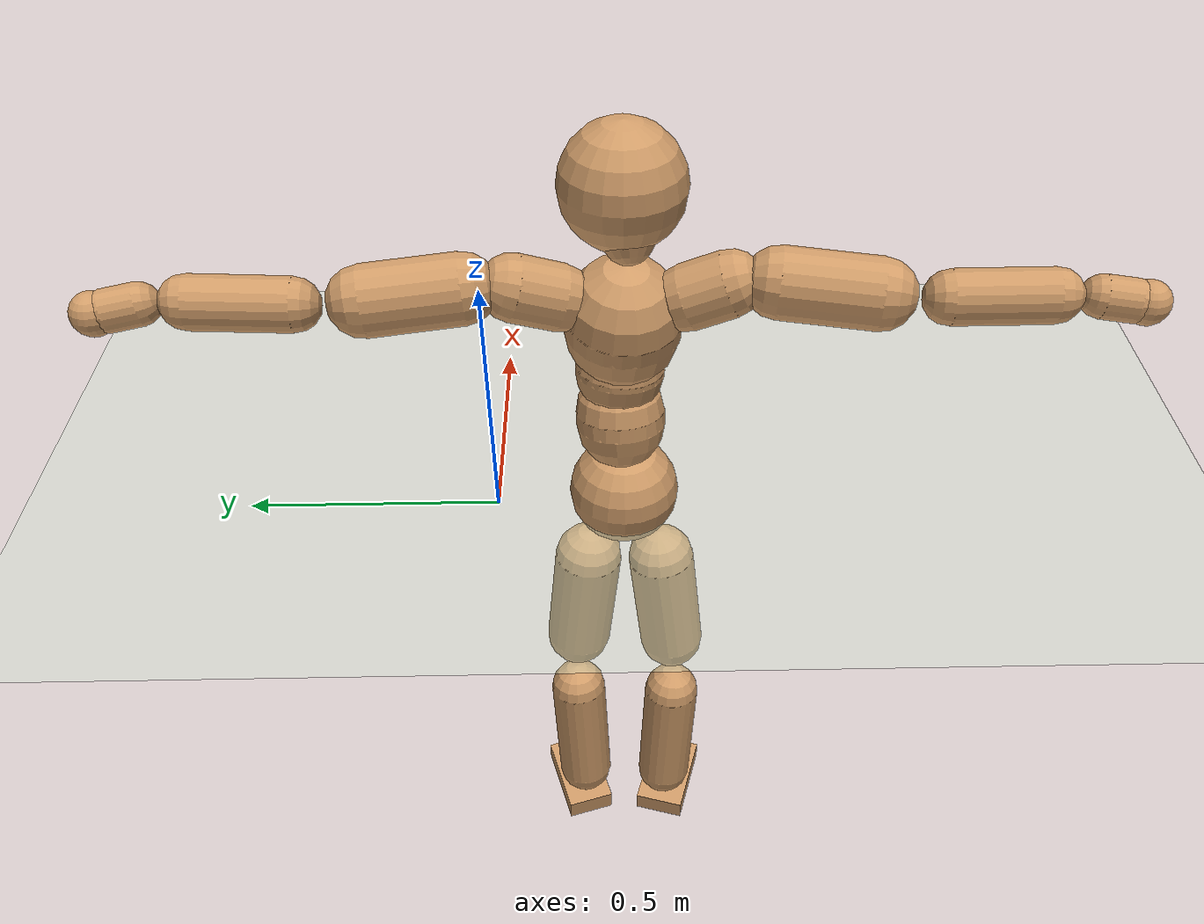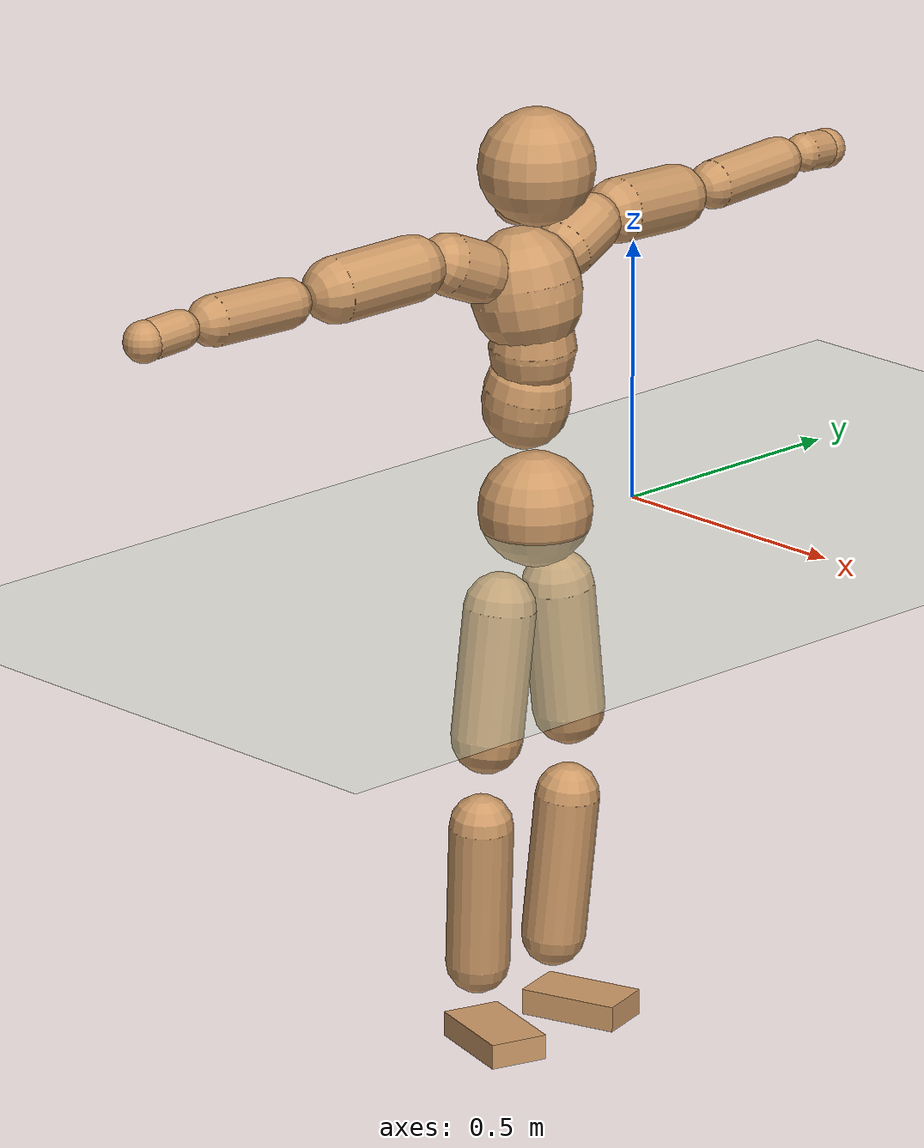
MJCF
<mujoco model="humanoid">
  <compiler coordinate="local"/>
  <default>
    <joint damping="0.0" armature="0.01" stiffness="0.0" limited="true"/>
    <geom conaffinity="1" condim="3" contype="7" margin="0.001" rgba="0.8 0.6 .4 1"/>
  </default>
  <asset>
    <texture type="skybox" builtin="gradient" rgb1=".4 .5 .6" rgb2="0 0 0" width="100" height="100"/>
    <texture builtin="flat" height="1278" mark="cross" markrgb="1 1 1" name="texgeom" random="0.01" rgb1="0.8 0.6 0.4" rgb2="0.8 0.6 0.4" type="cube" width="127"/>
    <texture builtin="checker" height="100" name="texplane" rgb1="0 0 0" rgb2="0.8 0.8 0.8" type="2d" width="100"/>
    <material name="MatPlane" reflectance="0.5" shininess="1" specular="1" texrepeat="60 60" texture="texplane"/>
    <material name="geom" texture="texgeom" texuniform="true"/>
  </asset>
  <worldbody>
    <light cutoff="100" diffuse="1 1 1" dir="-0 0 -1.3" directional="true" exponent="1" pos="0 0 1.3" specular=".1 .1 .1"/>
    <geom conaffinity="1" condim="3" name="floor" pos="0 0 0" rgba="0.8 0.9 0.8 1" size="100 100 .2" type="plane" material="MatPlane"/>
    <body name="Pelvis" pos="-0.0014 -0.2535 0.0367">
      <freejoint name="Pelvis"/>
      <geom type="sphere" contype="1" conaffinity="1" density="500" size="0.1086" pos="0.0000 0.0000 0.0000" name="Pelvis"/>
      <body name="L_Hip" pos="-0.017 0.066 -0.0888">
        <joint name="L_Hip_x" type="hinge" pos="0 0 0" axis="1 0 0" stiffness="800" damping="80" armature="0.02" range="-180.0000 180.0000"/>
        <joint name="L_Hip_y" type="hinge" pos="0 0 0" axis="0 1 0" stiffness="800" damping="80" armature="0.02" range="-180.0000 180.0000"/>
        <joint name="L_Hip_z" type="hinge" pos="0 0 0" axis="0 0 1" stiffness="800" damping="80" armature="0.02" range="-180.0000 180.0000"/>
        <geom type="capsule" contype="1" conaffinity="1" density="500" fromto="0.0007 0.0090 -0.0831 0.0027 0.0360 -0.3323" size="0.0689" name="L_Hip"/>
        <body name="L_Knee" pos="0.0033 0.045 -0.4154">
          <joint name="L_Knee_x" type="hinge" pos="0 0 0" axis="1 0 0" stiffness="800" damping="80" armature="0.02" range="-180.0000 180.0000"/>
          <joint name="L_Knee_y" type="hinge" pos="0 0 0" axis="0 1 0" stiffness="800" damping="80" armature="0.02" range="-180.0000 180.0000"/>
          <joint name="L_Knee_z" type="hinge" pos="0 0 0" axis="0 0 1" stiffness="800" damping="80" armature="0.02" range="-180.0000 180.0000"/>
          <geom type="capsule" contype="1" conaffinity="1" density="500" fromto="-0.0086 -0.0035 -0.0948 -0.0345 -0.0142 -0.3794" size="0.0615" name="L_Knee"/>
          <body name="L_Ankle" pos="-0.0431 -0.0177 -0.4742">
            <joint name="L_Ankle_x" type="hinge" pos="0 0 0" axis="1 0 0" stiffness="800" damping="80" armature="0.02" range="-180.0000 180.0000"/>
            <joint name="L_Ankle_y" type="hinge" pos="0 0 0" axis="0 1 0" stiffness="800" damping="80" armature="0.02" range="-180.0000 180.0000"/>
            <joint name="L_Ankle_z" type="hinge" pos="0 0 0" axis="0 0 1" stiffness="800" damping="80" armature="0.02" range="-180.0000 180.0000"/>
            <geom type="box" contype="1" conaffinity="1" density="500" pos="0.0664 0.0199 -0.0328" size="0.0971 0.0543 0.0248" quat="0.9894 0.0000 0.0000 0.1452" name="L_Ankle"/>
            <body name="L_Toe" pos="0.1329 0.0399 -0.0656">
              <joint name="L_Toe_x" type="hinge" pos="0 0 0" axis="1 0 0" stiffness="500" damping="50" armature="0.02" range="-180.0000 180.0000"/>
              <joint name="L_Toe_y" type="hinge" pos="0 0 0" axis="0 1 0" stiffness="500" damping="50" armature="0.02" range="-180.0000 180.0000"/>
              <joint name="L_Toe_z" type="hinge" pos="0 0 0" axis="0 0 1" stiffness="500" damping="50" armature="0.02" range="-180.0000 180.0000"/>
              <geom type="box" contype="1" conaffinity="1" density="500" pos="0.0000 0.0000 0.0319" size="0.0011 0.0027 0.0012" quat="0.9887 0.0000 0.0000 0.1499" name="L_Toe"/>
            </body>
          </body>
        </body>
      </body>
      <body name="R_Hip" pos="-0.0123 -0.0682 -0.0975">
        <joint name="R_Hip_x" type="hinge" pos="0 0 0" axis="1 0 0" stiffness="800" damping="80" armature="0.02" range="-180.0000 180.0000"/>
        <joint name="R_Hip_y" type="hinge" pos="0 0 0" axis="0 1 0" stiffness="800" damping="80" armature="0.02" range="-180.0000 180.0000"/>
        <joint name="R_Hip_z" type="hinge" pos="0 0 0" axis="0 0 1" stiffness="800" damping="80" armature="0.02" range="-180.0000 180.0000"/>
        <geom type="capsule" contype="1" conaffinity="1" density="500" fromto="-0.0021 -0.0093 -0.0834 -0.0082 -0.0371 -0.3335" size="0.0684" name="R_Hip"/>
        <body name="R_Knee" pos="-0.0103 -0.0464 -0.4169">
          <joint name="R_Knee_x" type="hinge" pos="0 0 0" axis="1 0 0" stiffness="800" damping="80" armature="0.02" range="-180.0000 180.0000"/>
          <joint name="R_Knee_y" type="hinge" pos="0 0 0" axis="0 1 0" stiffness="800" damping="80" armature="0.02" range="-180.0000 180.0000"/>
          <joint name="R_Knee_z" type="hinge" pos="0 0 0" axis="0 0 1" stiffness="800" damping="80" armature="0.02" range="-180.0000 180.0000"/>
          <geom type="capsule" contype="1" conaffinity="1" density="500" fromto="-0.0079 0.0044 -0.0937 -0.0315 0.0176 -0.3749" size="0.0611" name="R_Knee"/>
          <body name="R_Ankle" pos="-0.0394 0.022 -0.4686">
            <joint name="R_Ankle_x" type="hinge" pos="0 0 0" axis="1 0 0" stiffness="800" damping="80" armature="0.02" range="-180.0000 180.0000"/>
            <joint name="R_Ankle_y" type="hinge" pos="0 0 0" axis="0 1 0" stiffness="800" damping="80" armature="0.02" range="-180.0000 180.0000"/>
            <joint name="R_Ankle_z" type="hinge" pos="0 0 0" axis="0 0 1" stiffness="800" damping="80" armature="0.02" range="-180.0000 180.0000"/>
            <geom type="box" contype="1" conaffinity="1" density="500" pos="0.0705 -0.0204 -0.0341" size="0.0975 0.0568 0.0239" quat="0.9901 0.0000 0.0000 -0.1406" name="R_Ankle"/>
            <body name="R_Toe" pos="0.1411 -0.0409 -0.0683">
              <joint name="R_Toe_x" type="hinge" pos="0 0 0" axis="1 0 0" stiffness="500" damping="50" armature="0.02" range="-180.0000 180.0000"/>
              <joint name="R_Toe_y" type="hinge" pos="0 0 0" axis="0 1 0" stiffness="500" damping="50" armature="0.02" range="-180.0000 180.0000"/>
              <joint name="R_Toe_z" type="hinge" pos="0 0 0" axis="0 0 1" stiffness="500" damping="50" armature="0.02" range="-180.0000 180.0000"/>
              <geom type="box" contype="1" conaffinity="1" density="500" pos="0.0000 0.0000 0.0348" size="0.0012 0.0027 0.0012" quat="0.9912 0.0000 0.0000 -0.1323" name="R_Toe"/>
            </body>
          </body>
        </body>
      </body>
      <body name="Torso" pos="-0.0451 0.0051 0.1352">
        <joint name="Torso_x" type="hinge" pos="0 0 0" axis="1 0 0" stiffness="1000" damping="100" armature="0.02" range="-180.0000 180.0000"/>
        <joint name="Torso_y" type="hinge" pos="0 0 0" axis="0 1 0" stiffness="1000" damping="100" armature="0.02" range="-180.0000 180.0000"/>
        <joint name="Torso_z" type="hinge" pos="0 0 0" axis="0 0 1" stiffness="1000" damping="100" armature="0.02" range="-180.0000 180.0000"/>
        <geom type="capsule" contype="1" conaffinity="1" density="500" fromto="0.0165 0.0025 0.0859 0.0110 0.0017 0.0573" size="0.082956" name="Torso"/>
        <body name="Spine" pos="0.0276 0.0042 0.1432">
          <joint name="Spine_x" type="hinge" pos="0 0 0" axis="1 0 0" stiffness="1000" damping="100" armature="0.02" range="-180.0000 180.0000"/>
          <joint name="Spine_y" type="hinge" pos="0 0 0" axis="0 1 0" stiffness="1000" damping="100" armature="0.02" range="-180.0000 180.0000"/>
          <joint name="Spine_z" type="hinge" pos="0 0 0" axis="0 0 1" stiffness="1000" damping="100" armature="0.02" range="-180.0000 180.0000"/>
          <geom type="capsule" contype="1" conaffinity="1" density="500" fromto="0.0024 -0.0020 0.0352 0.0016 -0.0013 0.0235" size="0.082119" name="Spine"/>
          <body name="Chest" pos="0.0041 -0.0033 0.0587">
            <joint name="Chest_x" type="hinge" pos="0 0 0" axis="1 0 0" stiffness="1000" damping="100" armature="0.02" range="-180.0000 180.0000"/>
            <joint name="Chest_y" type="hinge" pos="0 0 0" axis="0 1 0" stiffness="1000" damping="100" armature="0.02" range="-180.0000 180.0000"/>
            <joint name="Chest_z" type="hinge" pos="0 0 0" axis="0 0 1" stiffness="1000" damping="100" armature="0.02" range="-180.0000 180.0000"/>
            <geom type="capsule" contype="1" conaffinity="1" density="500" fromto="-0.0166 -0.0050 0.0961 -0.0111 -0.0033 0.0640" size="0.104718" name="Chest"/>
            <body name="Neck" pos="-0.0392 -0.0143 0.2318">
              <joint name="Neck_x" type="hinge" pos="0 0 0" axis="1 0 0" stiffness="500" damping="50" armature="0.02" range="-180.0000 180.0000"/>
              <joint name="Neck_y" type="hinge" pos="0 0 0" axis="0 1 0" stiffness="500" damping="50" armature="0.02" range="-180.0000 180.0000"/>
              <joint name="Neck_z" type="hinge" pos="0 0 0" axis="0 0 1" stiffness="500" damping="50" armature="0.02" range="-180.0000 180.0000"/>
              <geom type="capsule" contype="1" conaffinity="1" density="500" fromto="0.0106 0.0020 0.0182 0.0422 0.0082 0.0726" size="0.045291" name="Neck"/>
              <body name="Head" pos="0.0528 0.0102 0.0908">
                <joint name="Head_x" type="hinge" pos="0 0 0" axis="1 0 0" stiffness="500" damping="50" armature="0.02" range="-180.0000 180.0000"/>
                <joint name="Head_y" type="hinge" pos="0 0 0" axis="0 1 0" stiffness="500" damping="50" armature="0.02" range="-180.0000 180.0000"/>
                <joint name="Head_z" type="hinge" pos="0 0 0" axis="0 0 1" stiffness="500" damping="50" armature="0.02" range="-180.0000 180.0000"/>
                <geom type="sphere" contype="1" conaffinity="1" density="500" size="0.1103" pos="0.0000 0.0000 0.0000" name="Head"/>
              </body>
            </body>
            <body name="L_Thorax" pos="-0.0193 0.0782 0.1251">
              <joint name="L_Thorax_x" type="hinge" pos="0 0 0" axis="1 0 0" stiffness="500" damping="50" armature="0.02" range="-180.0000 180.0000"/>
              <joint name="L_Thorax_y" type="hinge" pos="0 0 0" axis="0 1 0" stiffness="500" damping="50" armature="0.02" range="-180.0000 180.0000"/>
              <joint name="L_Thorax_z" type="hinge" pos="0 0 0" axis="0 0 1" stiffness="500" damping="50" armature="0.02" range="-180.0000 180.0000"/>
              <geom type="capsule" contype="1" conaffinity="1" density="500" fromto="-0.0045 0.0263 0.0096 -0.0180 0.1052 0.0383" size="0.0588" name="L_Thorax"/>
              <body name="L_Shoulder" pos="-0.0226 0.1316 0.0479">
                <joint name="L_Shoulder_x" type="hinge" pos="0 0 0" axis="1 0 0" stiffness="500" damping="50" armature="0.02" range="-720.0000 720.0000"/>
                <joint name="L_Shoulder_y" type="hinge" pos="0 0 0" axis="0 1 0" stiffness="500" damping="50" armature="0.02" range="-720.0000 720.0000"/>
                <joint name="L_Shoulder_z" type="hinge" pos="0 0 0" axis="0 0 1" stiffness="500" damping="50" armature="0.02" range="-720.0000 720.0000"/>
                <geom type="capsule" contype="1" conaffinity="1" density="500" fromto="-0.0056 0.0555 -0.0038 -0.0224 0.2219 -0.0151" size="0.062" name="L_Shoulder"/>
                <body name="L_Elbow" pos="-0.028 0.2774 -0.0189">
                  <joint name="L_Elbow_x" type="hinge" pos="0 0 0" axis="1 0 0" stiffness="500" damping="50" armature="0.02" range="-720.0000 720.0000"/>
                  <joint name="L_Elbow_y" type="hinge" pos="0 0 0" axis="0 1 0" stiffness="500" damping="50" armature="0.02" range="-720.0000 720.0000"/>
                  <joint name="L_Elbow_z" type="hinge" pos="0 0 0" axis="0 0 1" stiffness="500" damping="50" armature="0.02" range="-720.0000 720.0000"/>
                  <geom type="capsule" contype="1" conaffinity="1" density="500" fromto="-0.0011 0.0578 0.0030 -0.0045 0.2314 0.0122" size="0.0472" name="L_Elbow"/>
                  <body name="L_Wrist" pos="-0.0056 0.2892 0.0152">
                    <joint name="L_Wrist_x" type="hinge" pos="0 0 0" axis="1 0 0" stiffness="300" damping="30" armature="0.02" range="-180.0000 180.0000"/>
                    <joint name="L_Wrist_y" type="hinge" pos="0 0 0" axis="0 1 0" stiffness="300" damping="30" armature="0.02" range="-180.0000 180.0000"/>
                    <joint name="L_Wrist_z" type="hinge" pos="0 0 0" axis="0 0 1" stiffness="300" damping="30" armature="0.02" range="-180.0000 180.0000"/>
                    <geom type="capsule" contype="1" conaffinity="1" density="500" fromto="-0.0034 0.0187 -0.0023 -0.0135 0.0749 -0.0092" size="0.037" name="L_Wrist"/>
                    <body name="L_Hand" pos="-0.0169 0.0936 -0.0115">
                      <joint name="L_Hand_x" type="hinge" pos="0 0 0" axis="1 0 0" stiffness="300" damping="30" armature="0.02" range="-180.0000 180.0000"/>
                      <joint name="L_Hand_y" type="hinge" pos="0 0 0" axis="0 1 0" stiffness="300" damping="30" armature="0.02" range="-180.0000 180.0000"/>
                      <joint name="L_Hand_z" type="hinge" pos="0 0 0" axis="0 0 1" stiffness="300" damping="30" armature="0.02" range="-180.0000 180.0000"/>
                      <geom type="sphere" contype="1" conaffinity="1" density="500" size="0.0384" pos="0.0000 0.0000 0.0000" name="L_Hand"/>
                    </body>
                  </body>
                </body>
              </body>
            </body>
            <body name="R_Thorax" pos="-0.0246 -0.0887 0.1234">
              <joint name="R_Thorax_x" type="hinge" pos="0 0 0" axis="1 0 0" stiffness="500" damping="50" armature="0.02" range="-180.0000 180.0000"/>
              <joint name="R_Thorax_y" type="hinge" pos="0 0 0" axis="0 1 0" stiffness="500" damping="50" armature="0.02" range="-180.0000 180.0000"/>
              <joint name="R_Thorax_z" type="hinge" pos="0 0 0" axis="0 0 1" stiffness="500" damping="50" armature="0.02" range="-180.0000 180.0000"/>
              <geom type="capsule" contype="1" conaffinity="1" density="500" fromto="-0.0021 -0.0242 0.0102 -0.0082 -0.0970 0.0406" size="0.0586" name="R_Thorax"/>
              <body name="R_Shoulder" pos="-0.0103 -0.1212 0.0508">
                <joint name="R_Shoulder_x" type="hinge" pos="0 0 0" axis="1 0 0" stiffness="500" damping="50" armature="0.02" range="-720.0000 720.0000"/>
                <joint name="R_Shoulder_y" type="hinge" pos="0 0 0" axis="0 1 0" stiffness="500" damping="50" armature="0.02" range="-720.0000 720.0000"/>
                <joint name="R_Shoulder_z" type="hinge" pos="0 0 0" axis="0 0 1" stiffness="500" damping="50" armature="0.02" range="-720.0000 720.0000"/>
                <geom type="capsule" contype="1" conaffinity="1" density="500" fromto="-0.0076 -0.0566 -0.0034 -0.0306 -0.2265 -0.0134" size="0.0628" name="R_Shoulder"/>
                <body name="R_Elbow" pos="-0.0382 -0.2832 -0.0168">
                  <joint name="R_Elbow_x" type="hinge" pos="0 0 0" axis="1 0 0" stiffness="500" damping="50" armature="0.02" range="-720.0000 720.0000"/>
                  <joint name="R_Elbow_y" type="hinge" pos="0 0 0" axis="0 1 0" stiffness="500" damping="50" armature="0.02" range="-720.0000 720.0000"/>
                  <joint name="R_Elbow_z" type="hinge" pos="0 0 0" axis="0 0 1" stiffness="500" damping="50" armature="0.02" range="-720.0000 720.0000"/>
                  <geom type="capsule" contype="1" conaffinity="1" density="500" fromto="-0.0013 -0.0583 0.0013 -0.0054 -0.2331 0.0051" size="0.0479" name="R_Elbow"/>
                  <body name="R_Wrist" pos="-0.0067 -0.2914 0.0064">
                    <joint name="R_Wrist_x" type="hinge" pos="0 0 0" axis="1 0 0" stiffness="300" damping="30" armature="0.02" range="-180.0000 180.0000"/>
                    <joint name="R_Wrist_y" type="hinge" pos="0 0 0" axis="0 1 0" stiffness="300" damping="30" armature="0.02" range="-180.0000 180.0000"/>
                    <joint name="R_Wrist_z" type="hinge" pos="0 0 0" axis="0 0 1" stiffness="300" damping="30" armature="0.02" range="-180.0000 180.0000"/>
                    <geom type="capsule" contype="1" conaffinity="1" density="500" fromto="-0.0021 -0.0191 -0.0019 -0.0086 -0.0766 -0.0075" size="0.0377" name="R_Wrist"/>
                    <body name="R_Hand" pos="-0.0107 -0.0957 -0.0094">
                      <joint name="R_Hand_x" type="hinge" pos="0 0 0" axis="1 0 0" stiffness="300" damping="30" armature="0.02" range="-180.0000 180.0000"/>
                      <joint name="R_Hand_y" type="hinge" pos="0 0 0" axis="0 1 0" stiffness="300" damping="30" armature="0.02" range="-180.0000 180.0000"/>
                      <joint name="R_Hand_z" type="hinge" pos="0 0 0" axis="0 0 1" stiffness="300" damping="30" armature="0.02" range="-180.0000 180.0000"/>
                      <geom type="sphere" contype="1" conaffinity="1" density="500" size="0.0390" pos="0.0000 0.0000 0.0000" name="R_Hand"/>
                    </body>
                  </body>
                </body>
              </body>
            </body>
          </body>
        </body>
      </body>
    </body>
  </worldbody>
  <actuator>
    <motor name="L_Hip_x" joint="L_Hip_x" gear="500"/>
    <motor name="L_Hip_y" joint="L_Hip_y" gear="500"/>
    <motor name="L_Hip_z" joint="L_Hip_z" gear="500"/>
    <motor name="L_Knee_x" joint="L_Knee_x" gear="500"/>
    <motor name="L_Knee_y" joint="L_Knee_y" gear="500"/>
    <motor name="L_Knee_z" joint="L_Knee_z" gear="500"/>
    <motor name="L_Ankle_x" joint="L_Ankle_x" gear="500"/>
    <motor name="L_Ankle_y" joint="L_Ankle_y" gear="500"/>
    <motor name="L_Ankle_z" joint="L_Ankle_z" gear="500"/>
    <motor name="L_Toe_x" joint="L_Toe_x" gear="500"/>
    <motor name="L_Toe_y" joint="L_Toe_y" gear="500"/>
    <motor name="L_Toe_z" joint="L_Toe_z" gear="500"/>
    <motor name="R_Hip_x" joint="R_Hip_x" gear="500"/>
    <motor name="R_Hip_y" joint="R_Hip_y" gear="500"/>
    <motor name="R_Hip_z" joint="R_Hip_z" gear="500"/>
    <motor name="R_Knee_x" joint="R_Knee_x" gear="500"/>
    <motor name="R_Knee_y" joint="R_Knee_y" gear="500"/>
    <motor name="R_Knee_z" joint="R_Knee_z" gear="500"/>
    <motor name="R_Ankle_x" joint="R_Ankle_x" gear="500"/>
    <motor name="R_Ankle_y" joint="R_Ankle_y" gear="500"/>
    <motor name="R_Ankle_z" joint="R_Ankle_z" gear="500"/>
    <motor name="R_Toe_x" joint="R_Toe_x" gear="500"/>
    <motor name="R_Toe_y" joint="R_Toe_y" gear="500"/>
    <motor name="R_Toe_z" joint="R_Toe_z" gear="500"/>
    <motor name="Torso_x" joint="Torso_x" gear="500"/>
    <motor name="Torso_y" joint="Torso_y" gear="500"/>
    <motor name="Torso_z" joint="Torso_z" gear="500"/>
    <motor name="Spine_x" joint="Spine_x" gear="500"/>
    <motor name="Spine_y" joint="Spine_y" gear="500"/>
    <motor name="Spine_z" joint="Spine_z" gear="500"/>
    <motor name="Chest_x" joint="Chest_x" gear="500"/>
    <motor name="Chest_y" joint="Chest_y" gear="500"/>
    <motor name="Chest_z" joint="Chest_z" gear="500"/>
    <motor name="Neck_x" joint="Neck_x" gear="500"/>
    <motor name="Neck_y" joint="Neck_y" gear="500"/>
    <motor name="Neck_z" joint="Neck_z" gear="500"/>
    <motor name="Head_x" joint="Head_x" gear="500"/>
    <motor name="Head_y" joint="Head_y" gear="500"/>
    <motor name="Head_z" joint="Head_z" gear="500"/>
    <motor name="L_Thorax_x" joint="L_Thorax_x" gear="500"/>
    <motor name="L_Thorax_y" joint="L_Thorax_y" gear="500"/>
    <motor name="L_Thorax_z" joint="L_Thorax_z" gear="500"/>
    <motor name="L_Shoulder_x" joint="L_Shoulder_x" gear="500"/>
    <motor name="L_Shoulder_y" joint="L_Shoulder_y" gear="500"/>
    <motor name="L_Shoulder_z" joint="L_Shoulder_z" gear="500"/>
    <motor name="L_Elbow_x" joint="L_Elbow_x" gear="500"/>
    <motor name="L_Elbow_y" joint="L_Elbow_y" gear="500"/>
    <motor name="L_Elbow_z" joint="L_Elbow_z" gear="500"/>
    <motor name="L_Wrist_x" joint="L_Wrist_x" gear="500"/>
    <motor name="L_Wrist_y" joint="L_Wrist_y" gear="500"/>
    <motor name="L_Wrist_z" joint="L_Wrist_z" gear="500"/>
    <motor name="L_Hand_x" joint="L_Hand_x" gear="500"/>
    <motor name="L_Hand_y" joint="L_Hand_y" gear="500"/>
    <motor name="L_Hand_z" joint="L_Hand_z" gear="500"/>
    <motor name="R_Thorax_x" joint="R_Thorax_x" gear="500"/>
    <motor name="R_Thorax_y" joint="R_Thorax_y" gear="500"/>
    <motor name="R_Thorax_z" joint="R_Thorax_z" gear="500"/>
    <motor name="R_Shoulder_x" joint="R_Shoulder_x" gear="500"/>
    <motor name="R_Shoulder_y" joint="R_Shoulder_y" gear="500"/>
    <motor name="R_Shoulder_z" joint="R_Shoulder_z" gear="500"/>
    <motor name="R_Elbow_x" joint="R_Elbow_x" gear="500"/>
    <motor name="R_Elbow_y" joint="R_Elbow_y" gear="500"/>
    <motor name="R_Elbow_z" joint="R_Elbow_z" gear="500"/>
    <motor name="R_Wrist_x" joint="R_Wrist_x" gear="500"/>
    <motor name="R_Wrist_y" joint="R_Wrist_y" gear="500"/>
    <motor name="R_Wrist_z" joint="R_Wrist_z" gear="500"/>
    <motor name="R_Hand_x" joint="R_Hand_x" gear="500"/>
    <motor name="R_Hand_y" joint="R_Hand_y" gear="500"/>
    <motor name="R_Hand_z" joint="R_Hand_z" gear="500"/>
  </actuator>
  <contact>
    <exclude body1="Torso" body2="Chest"/>
    <exclude body1="Head" body2="Chest"/>
    <exclude body1="R_Knee" body2="R_Toe"/>
    <exclude body1="R_Knee" body2="L_Ankle"/>
    <exclude body1="R_Knee" body2="L_Toe"/>
    <exclude body1="L_Knee" body2="L_Toe"/>
    <exclude body1="L_Knee" body2="R_Ankle"/>
    <exclude body1="L_Knee" body2="R_Toe"/>
    <exclude body1="L_Shoulder" body2="Chest"/>
    <exclude body1="R_Shoulder" body2="Chest"/>
  </contact>
  <sensor/>
  <size njmax="700" nconmax="700"/>
</mujoco>
